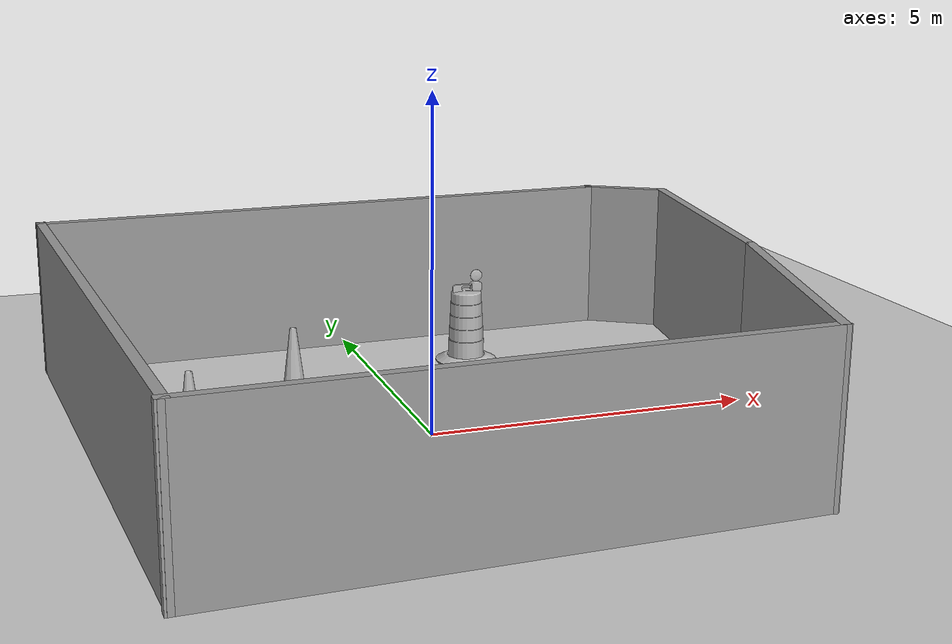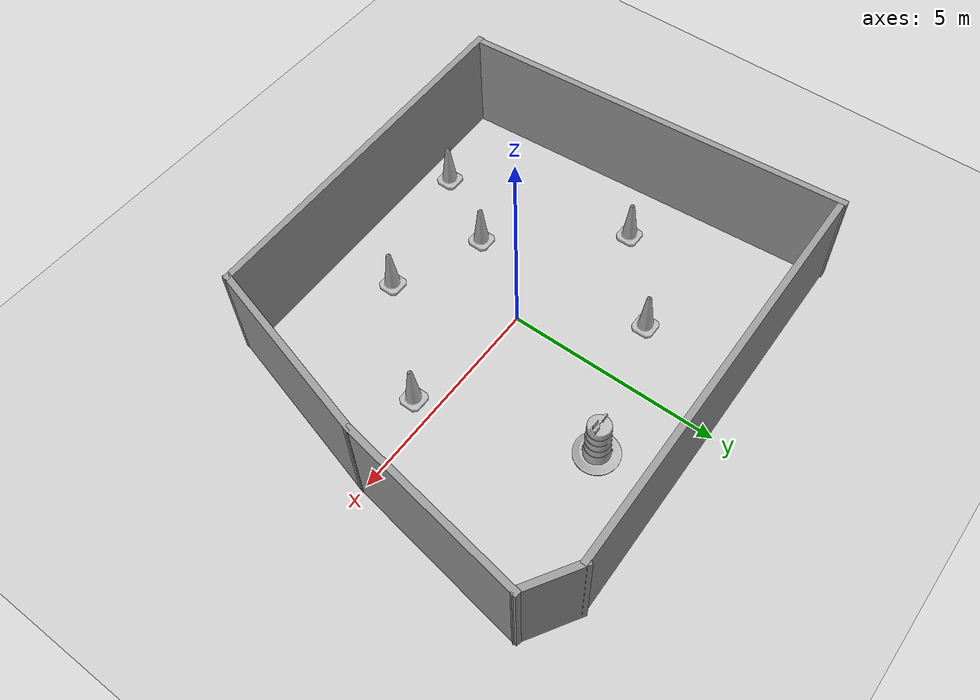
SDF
<sdf version="1.7">
 <world name="default">
  <light name="sun" type="directional">
   <pose>0 0 10 0 -0 0</pose>
   <diffuse>0.8 0.8 0.8 1</diffuse>
   <specular>0.2 0.2 0.2 1</specular>
   <attenuation>
    <range>1000</range>
    <constant>0.9</constant>
    <linear>0.01</linear>
    <quadratic>0.001</quadratic>
   </attenuation>
   <direction>-0.5 0.1 -0.9</direction>
   <spot><inner_angle>0</inner_angle><outer_angle>0</outer_angle><falloff>0</falloff></spot>
  </light>
  <model name="ground_plane">
   <static>1</static>
   <link name="link">
    <collision name="collision">
     <geometry><plane><normal>0 0 1</normal><size>100 100</size></plane></geometry>
     <surface>
      <contact><collide_bitmask>65535</collide_bitmask></contact>
      <friction><ode><mu>100</mu><mu2>50</mu2></ode></friction>
     </surface>
    </collision>
    <visual name="visual">
     <geometry><plane><normal>0 0 1</normal><size>100 100</size></plane></geometry>
     <material>
      <script><uri>file://media/materials/scripts/gazebo.material</uri><name>Gazebo/Grey</name></script>
     </material>
    </visual>
   </link>
  </model>
  <gravity>0 0 -9.8</gravity>
  <magnetic_field>6e-06 2.3e-05 -4.2e-05</magnetic_field>
  <atmosphere type="adiabatic"/>
  <physics type="ode">
   <max_step_size>0.001</max_step_size>
   <real_time_factor>1</real_time_factor>
   <real_time_update_rate>1000</real_time_update_rate>
  </physics>
  <scene><ambient>0.4 0.4 0.4 1</ambient><background>0.7 0.7 0.7 1</background><shadows>1</shadows></scene>
  <audio><device>default</device></audio>
  <spherical_coordinates>
   <surface_model>EARTH_WGS84</surface_model>
   <latitude_deg>0</latitude_deg>
   <longitude_deg>0</longitude_deg>
   <elevation>0</elevation>
   <heading_deg>0</heading_deg>
  </spherical_coordinates>
  <model name="Construction Barrel">
   <link name="link">
    <inertial>
     <pose>0 0 0.4 0 -0 0</pose>
     <mass>500</mass>
     <inertia><ixx>51.2096</ixx><iyy>51.2096</iyy><izz>25</izz><ixy>0</ixy><ixz>0</ixz><iyz>0</iyz></inertia>
    </inertial>
    <collision name="collision">
     <geometry><mesh><uri>model://construction_barrel/meshes/construction_barrel.dae</uri></mesh></geometry>
    </collision>
    <visual name="visual">
     <geometry><mesh><uri>model://construction_barrel/meshes/construction_barrel.dae</uri></mesh></geometry>
    </visual>
   </link>
   <pose>1.68402 3.27474 -1e-06 3e-06 -0 -2.7e-05</pose>
  </model>
  <model name="Construction Cone">
   <link name="link">
    <collision name="collision">
     <geometry>
      <mesh><scale>10 10 10</scale><uri>model://construction_cone/meshes/construction_cone.dae</uri></mesh>
     </geometry>
    </collision>
    <visual name="visual">
     <geometry>
      <mesh><scale>10 10 10</scale><uri>model://construction_cone/meshes/construction_cone.dae</uri></mesh>
     </geometry>
    </visual>
    <inertial>
     <inertia><ixx>1</ixx><ixy>0</ixy><ixz>0</ixz><iyy>1</iyy><iyz>0</iyz><izz>1</izz></inertia>
     <mass>1</mass>
    </inertial>
   </link>
   <pose>-2.26405 -3.70268 0 -0 -0 -0</pose>
  </model>
  <model name="Construction Cone_clone">
   <link name="link">
    <collision name="collision">
     <geometry>
      <mesh><scale>10 10 10</scale><uri>model://construction_cone/meshes/construction_cone.dae</uri></mesh>
     </geometry>
    </collision>
    <visual name="visual">
     <geometry>
      <mesh><scale>10 10 10</scale><uri>model://construction_cone/meshes/construction_cone.dae</uri></mesh>
     </geometry>
    </visual>
    <inertial>
     <inertia><ixx>1</ixx><ixy>0</ixy><ixz>0</ixz><iyy>1</iyy><iyz>0</iyz><izz>1</izz></inertia>
     <mass>1</mass>
    </inertial>
   </link>
   <pose>0.913684 -2.80003 0 -0 -0 -0</pose>
  </model>
  <model name="Construction Cone_clone_0">
   <link name="link">
    <collision name="collision">
     <geometry>
      <mesh><scale>10 10 10</scale><uri>model://construction_cone/meshes/construction_cone.dae</uri></mesh>
     </geometry>
    </collision>
    <visual name="visual">
     <geometry>
      <mesh><scale>10 10 10</scale><uri>model://construction_cone/meshes/construction_cone.dae</uri></mesh>
     </geometry>
    </visual>
    <inertial>
     <inertia><ixx>1</ixx><ixy>0</ixy><ixz>0</ixz><iyy>1</iyy><iyz>0</iyz><izz>1</izz></inertia>
     <mass>1</mass>
    </inertial>
   </link>
   <pose>-1.25553 -1.96477 -0 0 -1e-06 0</pose>
  </model>
  <model name="Construction Cone_clone_1">
   <link name="link">
    <collision name="collision">
     <geometry>
      <mesh><scale>10 10 10</scale><uri>model://construction_cone/meshes/construction_cone.dae</uri></mesh>
     </geometry>
    </collision>
    <visual name="visual">
     <geometry>
      <mesh><scale>10 10 10</scale><uri>model://construction_cone/meshes/construction_cone.dae</uri></mesh>
     </geometry>
    </visual>
    <inertial>
     <inertia><ixx>1</ixx><ixy>0</ixy><ixz>0</ixz><iyy>1</iyy><iyz>0</iyz><izz>1</izz></inertia>
     <mass>1</mass>
    </inertial>
   </link>
   <pose>-3.39026 0.704081 -1e-05 -1e-06 0 0</pose>
  </model>
  <model name="Construction Cone_clone_2">
   <link name="link">
    <collision name="collision">
     <geometry>
      <mesh><scale>10 10 10</scale><uri>model://construction_cone/meshes/construction_cone.dae</uri></mesh>
     </geometry>
    </collision>
    <visual name="visual">
     <geometry>
      <mesh><scale>10 10 10</scale><uri>model://construction_cone/meshes/construction_cone.dae</uri></mesh>
     </geometry>
    </visual>
    <inertial>
     <inertia><ixx>1</ixx><ixy>0</ixy><ixz>0</ixz><iyy>1</iyy><iyz>0</iyz><izz>1</izz></inertia>
     <mass>1</mass>
    </inertial>
   </link>
   <pose>-1.49447 2.37871 -0 0 -1e-06 0</pose>
  </model>
  <model name="Construction Cone_clone_3">
   <link name="link">
    <collision name="collision">
     <geometry>
      <mesh><scale>10 10 10</scale><uri>model://construction_cone/meshes/construction_cone.dae</uri></mesh>
     </geometry>
    </collision>
    <visual name="visual">
     <geometry>
      <mesh><scale>10 10 10</scale><uri>model://construction_cone/meshes/construction_cone.dae</uri></mesh>
     </geometry>
    </visual>
    <inertial>
     <inertia><ixx>1</ixx><ixy>0</ixy><ixz>0</ixz><iyy>1</iyy><iyz>0</iyz><izz>1</izz></inertia>
     <mass>1</mass>
    </inertial>
   </link>
   <pose>2.92008 -0.521354 -0 0 -1e-06 0</pose>
  </model>
  <model name="nexwall">
   <pose>0.356207 0.281455 0 0 -0 0</pose>
   <link name="Wall_2">
    <collision name="Wall_2_Collision">
     <geometry><box><size>8.55904 0.15 2.5</size></box></geometry>
     <pose>0 0 1.25 0 -0 0</pose>
    </collision>
    <visual name="Wall_2_Visual">
     <pose>0 0 1.25 0 -0 0</pose>
     <geometry><box><size>8.55904 0.15 2.5</size></box></geometry>
     <material>
      <script><uri>file://media/materials/scripts/gazebo.material</uri><name>Gazebo/Grey</name></script>
      <ambient>1 1 1 1</ambient>
     </material>
     <meta><layer>0</layer></meta>
    </visual>
    <pose>-0.614151 -4.59154 0 0 -0 0.021705</pose>
   </link>
   <link name="Wall_3">
    <collision name="Wall_3_Collision">
     <geometry><box><size>4.5 0.15 2.5</size></box></geometry>
     <pose>0 0 1.25 0 -0 0</pose>
    </collision>
    <visual name="Wall_3_Visual">
     <pose>0 0 1.25 0 -0 0</pose>
     <geometry><box><size>4.5 0.15 2.5</size></box></geometry>
     <material>
      <script><uri>file://media/materials/scripts/gazebo.material</uri><name>Gazebo/Grey</name></script>
      <ambient>1 1 1 1</ambient>
     </material>
     <meta><layer>0</layer></meta>
    </visual>
    <pose>4.15231 -2.39939 0 0 -0 1.309</pose>
   </link>
   <link name="Wall_4">
    <collision name="Wall_4_Collision">
     <geometry><box><size>4.4882 0.15 2.5</size></box></geometry>
     <pose>0 0 1.25 0 -0 0</pose>
    </collision>
    <visual name="Wall_4_Visual">
     <pose>0 0 1.25 0 -0 0</pose>
     <geometry><box><size>4.4882 0.15 2.5</size></box></geometry>
     <material>
      <script><uri>file://media/materials/scripts/gazebo.material</uri><name>Gazebo/Grey</name></script>
      <ambient>1 1 1 1</ambient>
     </material>
     <meta><layer>0</layer></meta>
    </visual>
    <pose>5.04983 1.84464 0 0 -0 1.41592</pose>
   </link>
   <link name="Wall_5">
    <collision name="Wall_5_Collision">
     <geometry><box><size>1.48471 0.15 2.5</size></box></geometry>
     <pose>0 0 1.25 0 -0 0</pose>
    </collision>
    <visual name="Wall_5_Visual">
     <pose>0 0 1.25 0 -0 0</pose>
     <geometry><box><size>1.48471 0.15 2.5</size></box></geometry>
     <material>
      <script><uri>file://media/materials/scripts/gazebo.material</uri><name>Gazebo/Grey</name></script>
      <ambient>1 1 1 1</ambient>
     </material>
     <meta><layer>0</layer></meta>
    </visual>
    <pose>4.81686 4.3084 0 0 -0 2.58768</pose>
   </link>
   <link name="Wall_7">
    <collision name="Wall_7_Collision">
     <geometry><box><size>9.80878 0.15 2.5</size></box></geometry>
     <pose>0 0 1.25 0 -0 0</pose>
    </collision>
    <visual name="Wall_7_Visual">
     <pose>0 0 1.25 0 -0 0</pose>
     <geometry><box><size>9.80878 0.15 2.5</size></box></geometry>
     <material>
      <script><uri>file://media/materials/scripts/gazebo.material</uri><name>Gazebo/Grey</name></script>
      <ambient>1 1 1 1</ambient>
     </material>
     <meta><layer>0</layer></meta>
    </visual>
    <pose>-0.579236 4.53778 0 0 -0 -3.1227</pose>
   </link>
   <link name="Wall_8">
    <collision name="Wall_8_Collision">
     <geometry><box><size>9.33072 0.15 2.5</size></box></geometry>
     <pose>0 0 1.25 0 -0 0</pose>
    </collision>
    <visual name="Wall_8_Visual">
     <pose>0 0 1.25 0 -0 0</pose>
     <geometry><box><size>9.33072 0.15 2.5</size></box></geometry>
     <material>
      <script><uri>file://media/materials/scripts/gazebo.material</uri><name>Gazebo/Grey</name></script>
      <ambient>1 1 1 1</ambient>
     </material>
     <meta><layer>0</layer></meta>
    </visual>
    <pose>-5.09751 -0.102922 0 0 -0 -1.50316</pose>
   </link>
   <static>1</static>
  </model>
 </world>
</sdf>
